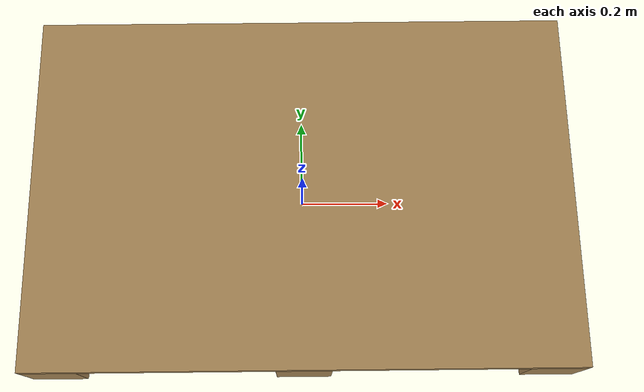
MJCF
<mujoco model="pallet">
  <!-- Euro pallet 1200 x 800 x 144 mm, static. A 14 cm step for the feet and a base for stacked
       crates. Origin at the floor, centre. Self-authored primitive (CC0). -->
  <asset>
    <material name="mat" rgba="0.66 0.53 0.34 1"/>
  </asset>
  <worldbody>
    <body name="pallet">
      <geom name="deck" type="box" size="0.60 0.40 0.011" pos="0 0 0.133" material="mat" friction="0.9 0.02 0.0005" condim="4"/>
      <geom name="block0" type="box" size="0.06 0.40 0.061" pos="0.54 0 0.061" material="mat" condim="4"/>
      <geom name="block1" type="box" size="0.06 0.40 0.061" pos="0 0 0.061" material="mat" condim="4"/>
      <geom name="block2" type="box" size="0.06 0.40 0.061" pos="-0.54 0 0.061" material="mat" condim="4"/>
    </body>
  </worldbody>
</mujoco>
